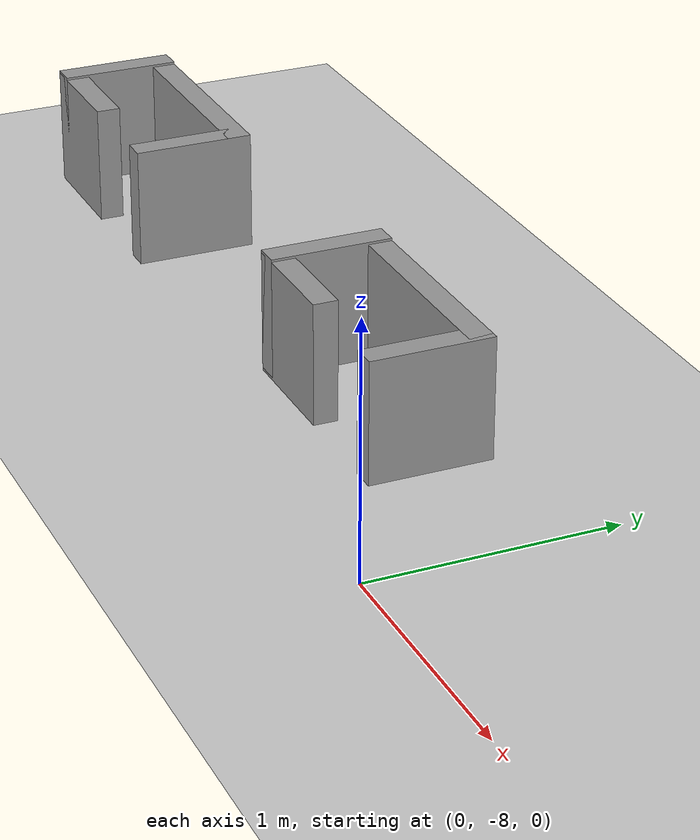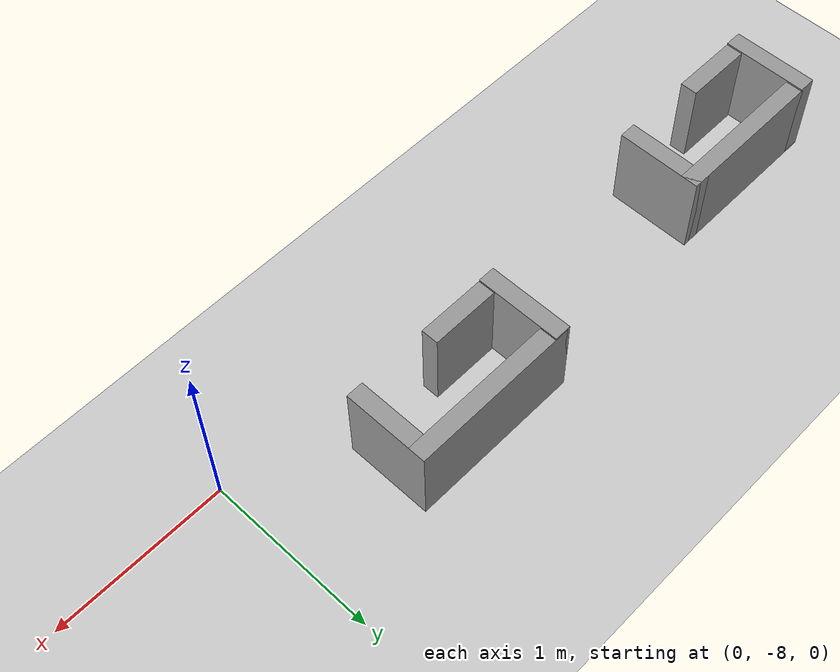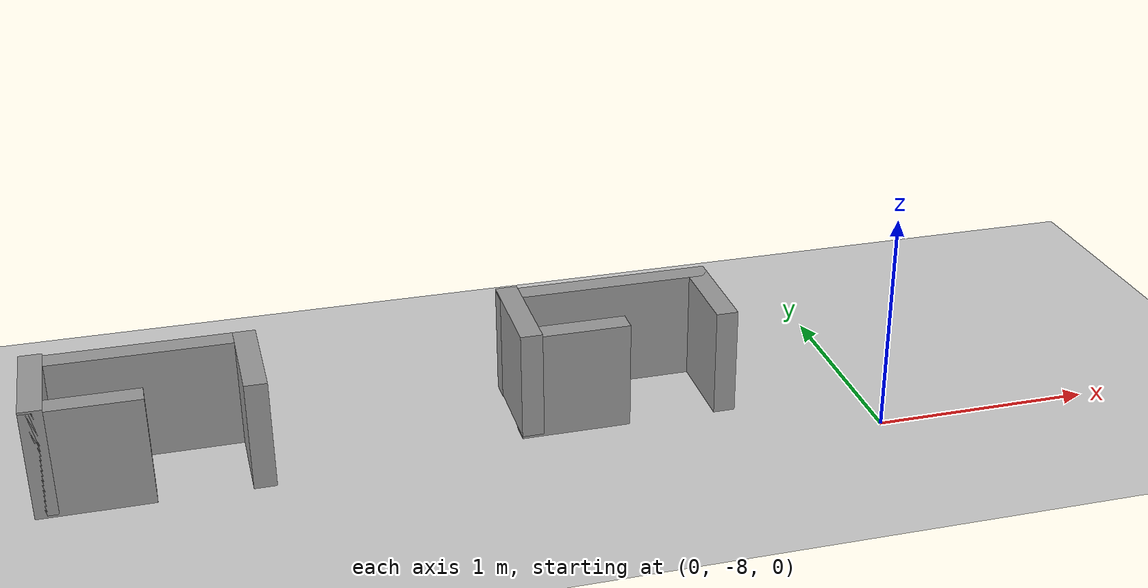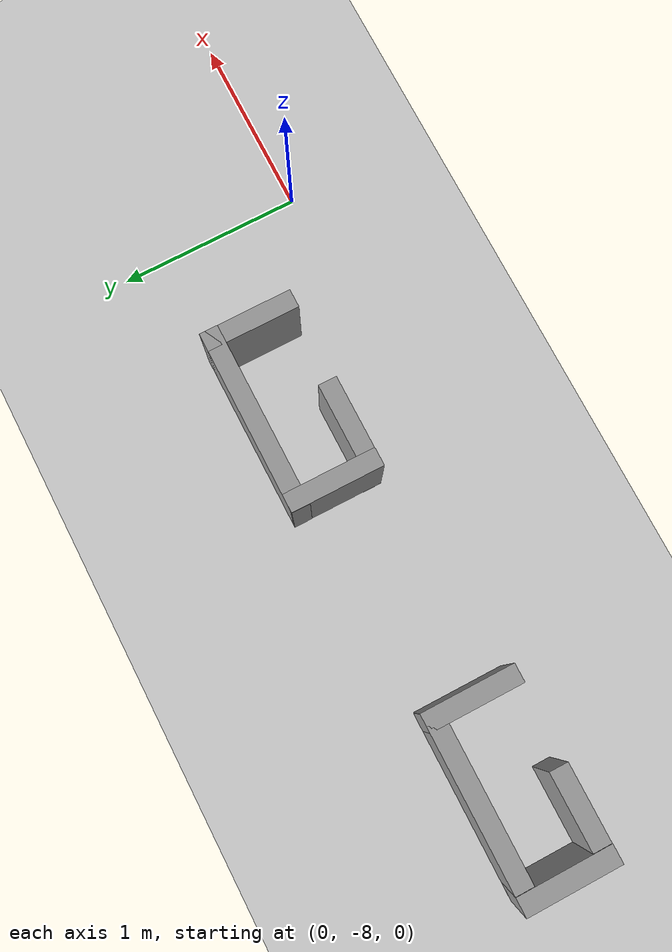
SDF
<sdf version="1.6">
 <world name="default">
  <model name="ground_plane">
   <static>1</static>
   <link name="link">
    <collision name="collision">
     <geometry><plane><normal>0 0 1</normal><size>20 20</size></plane></geometry>
     <surface>
      <contact><collide_bitmask>65535</collide_bitmask></contact>
      <friction><ode><mu>100</mu><mu2>50</mu2></ode></friction>
     </surface>
    </collision>
    <visual name="visual">
     <cast_shadows>0</cast_shadows>
     <geometry><plane><normal>0 0 1</normal><size>20 20</size></plane></geometry>
     <material>
      <script><uri>file://media/materials/scripts/gazebo.material</uri><name>Gazebo/Grey</name></script>
     </material>
    </visual>
   </link>
  </model>
  <model name="shape0">
   <pose>-3.2 -7.55 0 0 -0 0</pose>
   <link name="Wall_0">
    <pose>0 0.2 0 0 -0 0</pose>
    <inertial>
     <mass>1</mass>
     <inertia><ixx>1</ixx><ixy>0</ixy><ixz>0</ixz><iyy>1</iyy><iyz>0</iyz><izz>1</izz></inertia>
    </inertial>
    <visual name="Wall_0_Visual">
     <pose>0 0 0.25 0 -0 0</pose>
     <geometry><box><size>1 0.1 0.5</size></box></geometry>
     <material>
      <script><uri>file://media/materials/scripts/gazebo.material</uri><name>Gazebo/Grey</name></script>
      <ambient>1 1 1 1</ambient>
      <shader type="vertex"><normal_map>__default__</normal_map></shader>
      <diffuse>0.7 0.7 0.7 1</diffuse>
      <specular>0.01 0.01 0.01 1</specular>
      <emissive>0 0 0 1</emissive>
     </material>
     <meta><layer>0</layer></meta>
    </visual>
    <collision name="Wall_0_Collision">
     <pose>0 0 0.25 0 -0 0</pose>
     <geometry><box><size>1 0.1 0.5</size></box></geometry>
     <surface>
      <friction>
       <ode><mu>1</mu><mu2>1</mu2><fdir1>0 0 0</fdir1><slip1>0</slip1><slip2>0</slip2></ode>
       <torsional>
        <coefficient>1</coefficient>
        <patch_radius>0</patch_radius>
        <surface_radius>0</surface_radius>
        <use_patch_radius>1</use_patch_radius>
        <ode><slip>0</slip></ode>
       </torsional>
      </friction>
      <bounce><restitution_coefficient>0</restitution_coefficient><threshold>1e+06</threshold></bounce>
      <contact>
       <collide_without_contact>0</collide_without_contact>
       <collide_without_contact_bitmask>1</collide_without_contact_bitmask>
       <collide_bitmask>1</collide_bitmask>
       <ode>
        <soft_cfm>0</soft_cfm>
        <soft_erp>0.2</soft_erp>
        <kp>1e+13</kp>
        <kd>1</kd>
        <max_vel>0.01</max_vel>
        <min_depth>0</min_depth>
       </ode>
       <bullet>
        <split_impulse>1</split_impulse>
        <split_impulse_penetration_threshold>-0.01</split_impulse_penetration_threshold>
        <soft_cfm>0</soft_cfm>
        <soft_erp>0.2</soft_erp>
        <kp>1e+13</kp>
        <kd>1</kd>
       </bullet>
      </contact>
     </surface>
    </collision>
   </link>
   <link name="Wall_2">
    <pose>-0.45 0 0.01 0 0 -1.5708</pose>
    <inertial>
     <mass>1</mass>
     <inertia><ixx>1</ixx><ixy>0</ixy><ixz>0</ixz><iyy>1</iyy><iyz>0</iyz><izz>1</izz></inertia>
    </inertial>
    <visual name="Wall_2_Visual">
     <pose>0 0 0.25 0 -0 0</pose>
     <geometry><box><size>0.5 0.1 0.5</size></box></geometry>
     <material>
      <script><uri>file://media/materials/scripts/gazebo.material</uri><name>Gazebo/Grey</name></script>
      <ambient>1 1 1 1</ambient>
      <shader type="vertex"><normal_map>__default__</normal_map></shader>
      <diffuse>0.7 0.7 0.7 1</diffuse>
      <specular>0.01 0.01 0.01 1</specular>
      <emissive>0 0 0 1</emissive>
     </material>
     <meta><layer>0</layer></meta>
    </visual>
    <collision name="Wall_2_Collision">
     <pose>0 0 0.25 0 -0 0</pose>
     <geometry><box><size>0.5 0.1 0.5</size></box></geometry>
     <surface>
      <friction>
       <ode><mu>1</mu><mu2>1</mu2><fdir1>0 0 0</fdir1><slip1>0</slip1><slip2>0</slip2></ode>
       <torsional>
        <coefficient>1</coefficient>
        <patch_radius>0</patch_radius>
        <surface_radius>0</surface_radius>
        <use_patch_radius>1</use_patch_radius>
        <ode><slip>0</slip></ode>
       </torsional>
      </friction>
      <bounce><restitution_coefficient>0</restitution_coefficient><threshold>1e+06</threshold></bounce>
      <contact>
       <collide_without_contact>0</collide_without_contact>
       <collide_without_contact_bitmask>1</collide_without_contact_bitmask>
       <collide_bitmask>1</collide_bitmask>
       <ode>
        <soft_cfm>0</soft_cfm>
        <soft_erp>0.2</soft_erp>
        <kp>1e+13</kp>
        <kd>1</kd>
        <max_vel>0.01</max_vel>
        <min_depth>0</min_depth>
       </ode>
       <bullet>
        <split_impulse>1</split_impulse>
        <split_impulse_penetration_threshold>-0.01</split_impulse_penetration_threshold>
        <soft_cfm>0</soft_cfm>
        <soft_erp>0.2</soft_erp>
        <kp>1e+13</kp>
        <kd>1</kd>
       </bullet>
      </contact>
     </surface>
    </collision>
   </link>
   <link name="Wall_4">
    <pose>0.45 0 0 0 0 -1.5708</pose>
    <inertial>
     <mass>1</mass>
     <inertia><ixx>1</ixx><ixy>0</ixy><ixz>0</ixz><iyy>1</iyy><iyz>0</iyz><izz>1</izz></inertia>
    </inertial>
    <visual name="Wall_4_Visual">
     <pose>0 0 0.25 0 -0 0</pose>
     <geometry><box><size>0.5 0.1 0.5</size></box></geometry>
     <material>
      <script><uri>file://media/materials/scripts/gazebo.material</uri><name>Gazebo/Grey</name></script>
      <ambient>1 1 1 1</ambient>
      <shader type="vertex"><normal_map>__default__</normal_map></shader>
      <diffuse>0.7 0.7 0.7 1</diffuse>
      <specular>0.01 0.01 0.01 1</specular>
      <emissive>0 0 0 1</emissive>
     </material>
     <meta><layer>0</layer></meta>
    </visual>
    <collision name="Wall_4_Collision">
     <pose>0 0 0.25 0 -0 0</pose>
     <geometry><box><size>0.5 0.1 0.5</size></box></geometry>
     <surface>
      <friction>
       <ode><mu>1</mu><mu2>1</mu2><fdir1>0 0 0</fdir1><slip1>0</slip1><slip2>0</slip2></ode>
       <torsional>
        <coefficient>1</coefficient>
        <patch_radius>0</patch_radius>
        <surface_radius>0</surface_radius>
        <use_patch_radius>1</use_patch_radius>
        <ode><slip>0</slip></ode>
       </torsional>
      </friction>
      <bounce><restitution_coefficient>0</restitution_coefficient><threshold>1e+06</threshold></bounce>
      <contact>
       <collide_without_contact>0</collide_without_contact>
       <collide_without_contact_bitmask>1</collide_without_contact_bitmask>
       <collide_bitmask>1</collide_bitmask>
       <ode>
        <soft_cfm>0</soft_cfm>
        <soft_erp>0.2</soft_erp>
        <kp>1e+13</kp>
        <kd>1</kd>
        <max_vel>0.01</max_vel>
        <min_depth>0</min_depth>
       </ode>
       <bullet>
        <split_impulse>1</split_impulse>
        <split_impulse_penetration_threshold>-0.01</split_impulse_penetration_threshold>
        <soft_cfm>0</soft_cfm>
        <soft_erp>0.2</soft_erp>
        <kp>1e+13</kp>
        <kd>1</kd>
       </bullet>
      </contact>
     </surface>
    </collision>
   </link>
   <link name="Wall_7">
    <pose>-0.25 -0.2 0 0 -0 0</pose>
    <inertial>
     <mass>1</mass>
     <inertia><ixx>1</ixx><ixy>0</ixy><ixz>0</ixz><iyy>1</iyy><iyz>0</iyz><izz>1</izz></inertia>
    </inertial>
    <visual name="Wall_7_Visual">
     <pose>0 0 0.25 0 -0 0</pose>
     <geometry><box><size>0.5 0.1 0.5</size></box></geometry>
     <material>
      <script><uri>file://media/materials/scripts/gazebo.material</uri><name>Gazebo/Grey</name></script>
      <ambient>1 1 1 1</ambient>
      <shader type="vertex"><normal_map>__default__</normal_map></shader>
      <diffuse>0.7 0.7 0.7 1</diffuse>
      <specular>0.01 0.01 0.01 1</specular>
      <emissive>0 0 0 1</emissive>
     </material>
     <meta><layer>0</layer></meta>
    </visual>
    <collision name="Wall_7_Collision">
     <pose>0 0 0.25 0 -0 0</pose>
     <geometry><box><size>0.5 0.1 0.5</size></box></geometry>
     <surface>
      <friction>
       <ode><mu>1</mu><mu2>1</mu2><fdir1>0 0 0</fdir1><slip1>0</slip1><slip2>0</slip2></ode>
       <torsional>
        <coefficient>1</coefficient>
        <patch_radius>0</patch_radius>
        <surface_radius>0</surface_radius>
        <use_patch_radius>1</use_patch_radius>
        <ode><slip>0</slip></ode>
       </torsional>
      </friction>
      <bounce><restitution_coefficient>0</restitution_coefficient><threshold>1e+06</threshold></bounce>
      <contact>
       <collide_without_contact>0</collide_without_contact>
       <collide_without_contact_bitmask>1</collide_without_contact_bitmask>
       <collide_bitmask>1</collide_bitmask>
       <ode>
        <soft_cfm>0</soft_cfm>
        <soft_erp>0.2</soft_erp>
        <kp>1e+13</kp>
        <kd>1</kd>
        <max_vel>0.01</max_vel>
        <min_depth>0</min_depth>
       </ode>
       <bullet>
        <split_impulse>1</split_impulse>
        <split_impulse_penetration_threshold>-0.01</split_impulse_penetration_threshold>
        <soft_cfm>0</soft_cfm>
        <soft_erp>0.2</soft_erp>
        <kp>1e+13</kp>
        <kd>1</kd>
       </bullet>
      </contact>
     </surface>
    </collision>
   </link>
   <static>1</static>
  </model>
  <model name="shape0">
   <pose>-1.1 -7.45 0 0 -0 0</pose>
   <link name="Wall_0">
    <pose>0 0.2 0 0 -0 0</pose>
    <inertial>
     <mass>1</mass>
     <inertia><ixx>1</ixx><ixy>0</ixy><ixz>0</ixz><iyy>1</iyy><iyz>0</iyz><izz>1</izz></inertia>
    </inertial>
    <visual name="Wall_0_Visual">
     <pose>0 0 0.25 0 -0 0</pose>
     <geometry><box><size>1 0.1 0.5</size></box></geometry>
     <material>
      <script><uri>file://media/materials/scripts/gazebo.material</uri><name>Gazebo/Grey</name></script>
      <ambient>1 1 1 1</ambient>
      <shader type="vertex"><normal_map>__default__</normal_map></shader>
      <diffuse>0.7 0.7 0.7 1</diffuse>
      <specular>0.01 0.01 0.01 1</specular>
      <emissive>0 0 0 1</emissive>
     </material>
     <meta><layer>0</layer></meta>
    </visual>
    <collision name="Wall_0_Collision">
     <pose>0 0 0.25 0 -0 0</pose>
     <geometry><box><size>1 0.1 0.5</size></box></geometry>
     <surface>
      <friction>
       <ode><mu>1</mu><mu2>1</mu2><fdir1>0 0 0</fdir1><slip1>0</slip1><slip2>0</slip2></ode>
       <torsional>
        <coefficient>1</coefficient>
        <patch_radius>0</patch_radius>
        <surface_radius>0</surface_radius>
        <use_patch_radius>1</use_patch_radius>
        <ode><slip>0</slip></ode>
       </torsional>
      </friction>
      <bounce><restitution_coefficient>0</restitution_coefficient><threshold>1e+06</threshold></bounce>
      <contact>
       <collide_without_contact>0</collide_without_contact>
       <collide_without_contact_bitmask>1</collide_without_contact_bitmask>
       <collide_bitmask>1</collide_bitmask>
       <ode>
        <soft_cfm>0</soft_cfm>
        <soft_erp>0.2</soft_erp>
        <kp>1e+13</kp>
        <kd>1</kd>
        <max_vel>0.01</max_vel>
        <min_depth>0</min_depth>
       </ode>
       <bullet>
        <split_impulse>1</split_impulse>
        <split_impulse_penetration_threshold>-0.01</split_impulse_penetration_threshold>
        <soft_cfm>0</soft_cfm>
        <soft_erp>0.2</soft_erp>
        <kp>1e+13</kp>
        <kd>1</kd>
       </bullet>
      </contact>
     </surface>
    </collision>
   </link>
   <link name="Wall_2">
    <pose>-0.45 0 0.01 0 0 -1.5708</pose>
    <inertial>
     <mass>1</mass>
     <inertia><ixx>1</ixx><ixy>0</ixy><ixz>0</ixz><iyy>1</iyy><iyz>0</iyz><izz>1</izz></inertia>
    </inertial>
    <visual name="Wall_2_Visual">
     <pose>0 0 0.25 0 -0 0</pose>
     <geometry><box><size>0.5 0.1 0.5</size></box></geometry>
     <material>
      <script><uri>file://media/materials/scripts/gazebo.material</uri><name>Gazebo/Grey</name></script>
      <ambient>1 1 1 1</ambient>
      <shader type="vertex"><normal_map>__default__</normal_map></shader>
      <diffuse>0.7 0.7 0.7 1</diffuse>
      <specular>0.01 0.01 0.01 1</specular>
      <emissive>0 0 0 1</emissive>
     </material>
     <meta><layer>0</layer></meta>
    </visual>
    <collision name="Wall_2_Collision">
     <pose>0 0 0.25 0 -0 0</pose>
     <geometry><box><size>0.5 0.1 0.5</size></box></geometry>
     <surface>
      <friction>
       <ode><mu>1</mu><mu2>1</mu2><fdir1>0 0 0</fdir1><slip1>0</slip1><slip2>0</slip2></ode>
       <torsional>
        <coefficient>1</coefficient>
        <patch_radius>0</patch_radius>
        <surface_radius>0</surface_radius>
        <use_patch_radius>1</use_patch_radius>
        <ode><slip>0</slip></ode>
       </torsional>
      </friction>
      <bounce><restitution_coefficient>0</restitution_coefficient><threshold>1e+06</threshold></bounce>
      <contact>
       <collide_without_contact>0</collide_without_contact>
       <collide_without_contact_bitmask>1</collide_without_contact_bitmask>
       <collide_bitmask>1</collide_bitmask>
       <ode>
        <soft_cfm>0</soft_cfm>
        <soft_erp>0.2</soft_erp>
        <kp>1e+13</kp>
        <kd>1</kd>
        <max_vel>0.01</max_vel>
        <min_depth>0</min_depth>
       </ode>
       <bullet>
        <split_impulse>1</split_impulse>
        <split_impulse_penetration_threshold>-0.01</split_impulse_penetration_threshold>
        <soft_cfm>0</soft_cfm>
        <soft_erp>0.2</soft_erp>
        <kp>1e+13</kp>
        <kd>1</kd>
       </bullet>
      </contact>
     </surface>
    </collision>
   </link>
   <link name="Wall_4">
    <pose>0.45 0 0 0 0 -1.5708</pose>
    <inertial>
     <mass>1</mass>
     <inertia><ixx>1</ixx><ixy>0</ixy><ixz>0</ixz><iyy>1</iyy><iyz>0</iyz><izz>1</izz></inertia>
    </inertial>
    <visual name="Wall_4_Visual">
     <pose>0 0 0.25 0 -0 0</pose>
     <geometry><box><size>0.5 0.1 0.5</size></box></geometry>
     <material>
      <script><uri>file://media/materials/scripts/gazebo.material</uri><name>Gazebo/Grey</name></script>
      <ambient>1 1 1 1</ambient>
      <shader type="vertex"><normal_map>__default__</normal_map></shader>
      <diffuse>0.7 0.7 0.7 1</diffuse>
      <specular>0.01 0.01 0.01 1</specular>
      <emissive>0 0 0 1</emissive>
     </material>
     <meta><layer>0</layer></meta>
    </visual>
    <collision name="Wall_4_Collision">
     <pose>0 0 0.25 0 -0 0</pose>
     <geometry><box><size>0.5 0.1 0.5</size></box></geometry>
     <surface>
      <friction>
       <ode><mu>1</mu><mu2>1</mu2><fdir1>0 0 0</fdir1><slip1>0</slip1><slip2>0</slip2></ode>
       <torsional>
        <coefficient>1</coefficient>
        <patch_radius>0</patch_radius>
        <surface_radius>0</surface_radius>
        <use_patch_radius>1</use_patch_radius>
        <ode><slip>0</slip></ode>
       </torsional>
      </friction>
      <bounce><restitution_coefficient>0</restitution_coefficient><threshold>1e+06</threshold></bounce>
      <contact>
       <collide_without_contact>0</collide_without_contact>
       <collide_without_contact_bitmask>1</collide_without_contact_bitmask>
       <collide_bitmask>1</collide_bitmask>
       <ode>
        <soft_cfm>0</soft_cfm>
        <soft_erp>0.2</soft_erp>
        <kp>1e+13</kp>
        <kd>1</kd>
        <max_vel>0.01</max_vel>
        <min_depth>0</min_depth>
       </ode>
       <bullet>
        <split_impulse>1</split_impulse>
        <split_impulse_penetration_threshold>-0.01</split_impulse_penetration_threshold>
        <soft_cfm>0</soft_cfm>
        <soft_erp>0.2</soft_erp>
        <kp>1e+13</kp>
        <kd>1</kd>
       </bullet>
      </contact>
     </surface>
    </collision>
   </link>
   <link name="Wall_7">
    <pose>-0.25 -0.2 0 0 -0 0</pose>
    <inertial>
     <mass>1</mass>
     <inertia><ixx>1</ixx><ixy>0</ixy><ixz>0</ixz><iyy>1</iyy><iyz>0</iyz><izz>1</izz></inertia>
    </inertial>
    <visual name="Wall_7_Visual">
     <pose>0 0 0.25 0 -0 0</pose>
     <geometry><box><size>0.5 0.1 0.5</size></box></geometry>
     <material>
      <script><uri>file://media/materials/scripts/gazebo.material</uri><name>Gazebo/Grey</name></script>
      <ambient>1 1 1 1</ambient>
      <shader type="vertex"><normal_map>__default__</normal_map></shader>
      <diffuse>0.7 0.7 0.7 1</diffuse>
      <specular>0.01 0.01 0.01 1</specular>
      <emissive>0 0 0 1</emissive>
     </material>
     <meta><layer>0</layer></meta>
    </visual>
    <collision name="Wall_7_Collision">
     <pose>0 0 0.25 0 -0 0</pose>
     <geometry><box><size>0.5 0.1 0.5</size></box></geometry>
     <surface>
      <friction>
       <ode><mu>1</mu><mu2>1</mu2><fdir1>0 0 0</fdir1><slip1>0</slip1><slip2>0</slip2></ode>
       <torsional>
        <coefficient>1</coefficient>
        <patch_radius>0</patch_radius>
        <surface_radius>0</surface_radius>
        <use_patch_radius>1</use_patch_radius>
        <ode><slip>0</slip></ode>
       </torsional>
      </friction>
      <bounce><restitution_coefficient>0</restitution_coefficient><threshold>1e+06</threshold></bounce>
      <contact>
       <collide_without_contact>0</collide_without_contact>
       <collide_without_contact_bitmask>1</collide_without_contact_bitmask>
       <collide_bitmask>1</collide_bitmask>
       <ode>
        <soft_cfm>0</soft_cfm>
        <soft_erp>0.2</soft_erp>
        <kp>1e+13</kp>
        <kd>1</kd>
        <max_vel>0.01</max_vel>
        <min_depth>0</min_depth>
       </ode>
       <bullet>
        <split_impulse>1</split_impulse>
        <split_impulse_penetration_threshold>-0.01</split_impulse_penetration_threshold>
        <soft_cfm>0</soft_cfm>
        <soft_erp>0.2</soft_erp>
        <kp>1e+13</kp>
        <kd>1</kd>
       </bullet>
      </contact>
     </surface>
    </collision>
   </link>
   <static>1</static>
  </model>
 </world>
</sdf>
